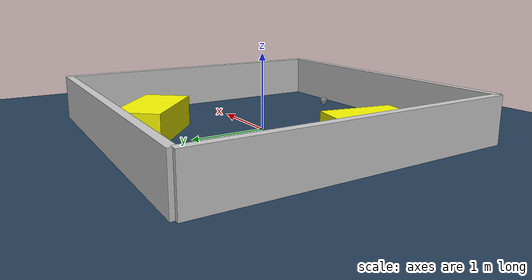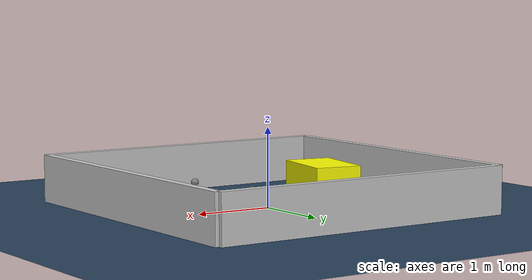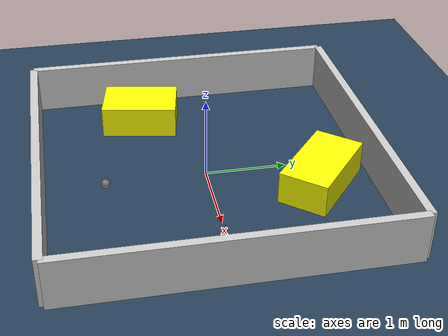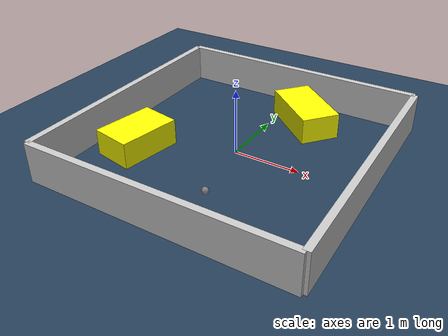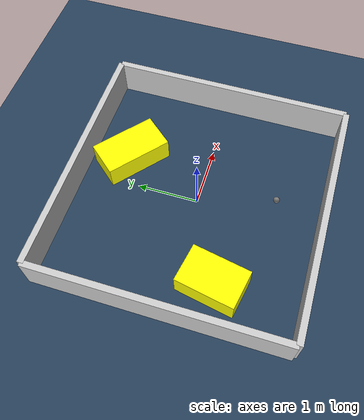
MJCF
<?xml version="1.0" ?>
<mujoco model="generated_environment">
  <option timestep="0.01" integrator="RK4" cone="elliptic"/>
  <default>
    <geom density="1"/>
  </default>
  <asset>
    <texture builtin="gradient" height="3072" rgb1="0.3 0.5 0.7" rgb2="0 0 0" type="skybox" width="512"/>
    <texture builtin="checker" height="300" mark="edge" markrgb="0.8 0.8 0.8" name="groundplane" rgb1="0.2 0.3 0.4" rgb2="0.1 0.2 0.3" type="2d" width="300"/>
    <material name="groundplane" reflectance="0.2" texrepeat="5 5" texture="groundplane" texuniform="true"/>
    <material name="robot" rgba="0.0 1.0 0.0 1"/>
  </asset>
  <worldbody>
    <light dir="0 0 -1" directional="true" pos="0 0 1.5"/>
    <geom condim="4" friction="1.0 0.005 0.001" material="groundplane" name="floor" size="0 0 0.05" type="plane"/>
    <body name="walls">
      <geom name="wall_1" condim="4" pos="-2.0 0.0 0.3" rgba="0.800000011920929 0.800000011920929 0.800000011920929 1.0" size="0.05 2.0 0.3" type="box"/>
      <geom name="wall_2" condim="4" pos="2.0 0.0 0.3" rgba="0.800000011920929 0.800000011920929 0.800000011920929 1.0" size="0.05 2.0 0.3" type="box"/>
      <geom name="wall_3" condim="4" pos="0.0 -2.0 0.3" rgba="0.800000011920929 0.800000011920929 0.800000011920929 1.0" size="2.0 0.05 0.3" type="box"/>
      <geom name="wall_4" condim="4" pos="0.0 2.0 0.3" rgba="0.800000011920929 0.800000011920929 0.800000011920929 1.0" size="2.0 0.05 0.3" type="box"/>
    </body>
    <body name="robot">
      <joint name="joint_x" type="slide" pos="0 0 0" axis="1 0 0"/>
      <joint name="joint_y" type="slide" pos="0 0 0" axis="0 1 0"/>
      <geom name="robot" type="sphere" pos="0.28596362189824465 -1.2388108606574915 0.2" size="0.05" mass="5." friction="1.0 0.005 0.0001" condim="4"/>
      <site name="sensor_ball"/>
    </body>
    <body name="obstacle_1_movable">
      <geom name="obstacle_1_movable" condim="4" pos="0.5043746138350227 1.2994565759205647 0.2" euler="0 0 139.78463615991706" friction="1.0 0.005 0.001" rgba="1 1 0 1" size="0.5459860989798762 0.2995717527666305 0.2" type="box" mass="0.1"/>
      <joint type="free"/>
    </body>
    <body name="obstacle_2_movable">
      <geom name="obstacle_2_movable" condim="4" pos="-1.317275661062208 -0.6421729008303603 0.2" euler="0 0 349.4444913590074" friction="1.0 0.005 0.001" rgba="1 1 0 1" size="0.31204460168778586 0.4755099586224701 0.2" type="box" mass="0.1"/>
      <joint type="free"/>
    </body>
  </worldbody>
  <actuator>
    <motor name="actuator_x" joint="joint_x" gear="1" ctrlrange="-1 1"/>
    <motor name="actuator_y" joint="joint_y" gear="1" ctrlrange="-1 1"/>
  </actuator>
</mujoco>
